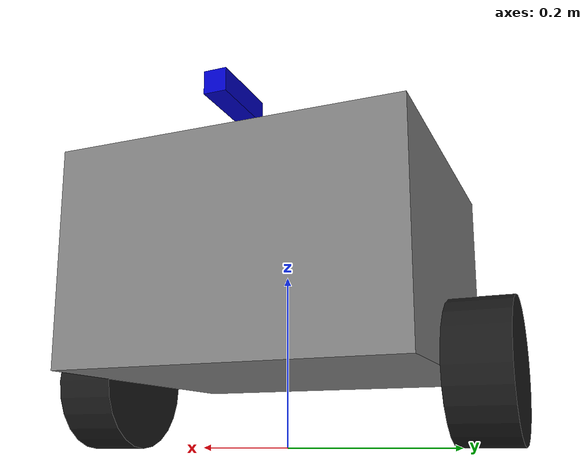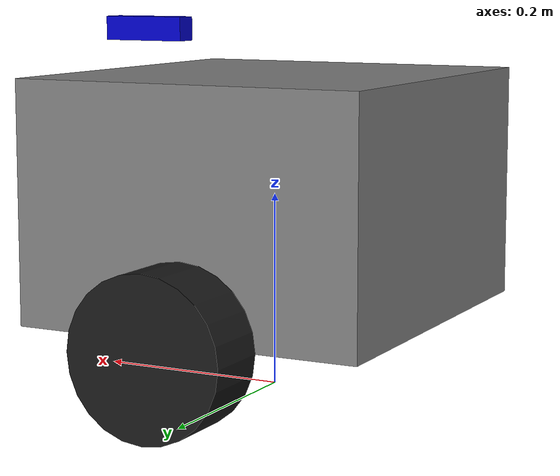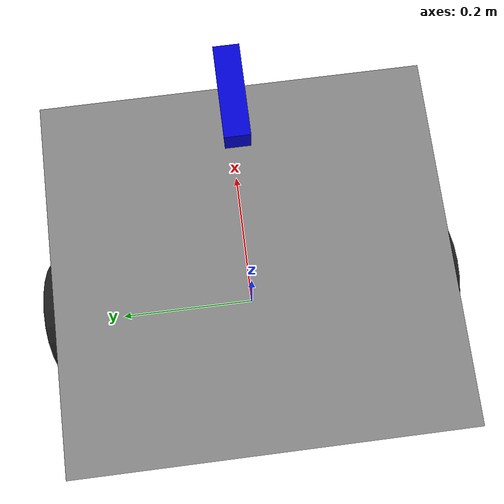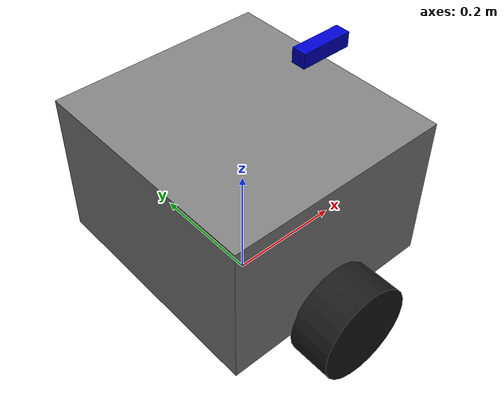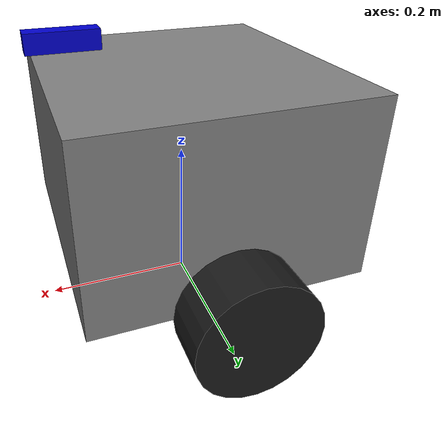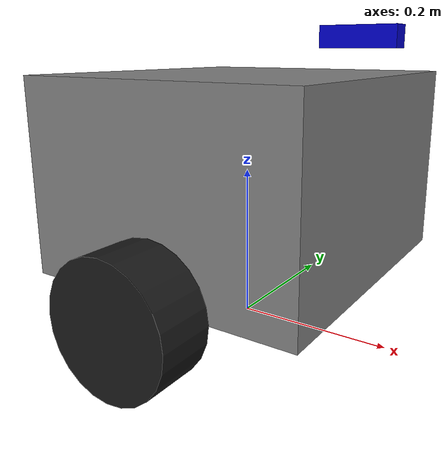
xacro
<?xml version="1.0"?>
<robot name="wall_e" xmlns:xacro="http://www.ros.org/wiki/xacro">

  <!-- ── PROPERTIES ── -->
  <xacro:property name="base_length"   value="0.365"/>
  <xacro:property name="base_width"    value="0.390"/>
  <xacro:property name="base_height"   value="0.245"/>
  <xacro:property name="track_width"   value="0.46"/>
  <xacro:property name="track_thick"   value="0.07"/>
  <xacro:property name="wheel_radius"  value="0.08"/>

  <xacro:property name="cam_height"    value="0.245"/>
  <xacro:property name="cam_forward"   value="0.15"/>

  <!-- ── BASE FOOTPRINT ── -->
  <link name="base_footprint">
    <inertial>
      <mass value="0.001"/>
      <inertia ixx="1e-6" ixy="0" ixz="0" iyy="1e-6" iyz="0" izz="1e-6"/>
    </inertial>
  </link>

  <joint name="base_footprint_joint" type="fixed">
    <parent link="base_footprint"/>
    <child  link="base_link"/>
    <origin xyz="0 0 ${base_height/2 + wheel_radius}" rpy="0 0 0"/>
  </joint>

  <!-- ── BASE LINK ── -->
  <link name="base_link">
    <visual>
      <geometry>
        <box size="${base_length} ${base_width} ${base_height}"/>
      </geometry>
      <material name="grey">
        <color rgba="0.5 0.5 0.5 1.0"/>
      </material>
    </visual>
    <collision>
      <geometry>
        <box size="${base_length} ${base_width} ${base_height}"/>
      </geometry>
    </collision>
    <inertial>
      <origin xyz="0 0 ${-base_height/4}" rpy="0 0 0"/>
      <mass value="8.0"/>
      <inertia ixx="0.1414" ixy="0" ixz="0"
               iyy="0.1288" iyz="0"
               izz="0.1902"/>
    </inertial>
  </link>

  <!-- ── LEFT TRACK (cylinder, rotation on joint) ── -->
  <link name="left_track">
    <visual>
      <origin xyz="0 0 0" rpy="0 0 0"/>
      <geometry>
        <cylinder length="${track_thick}" radius="${wheel_radius}"/>
      </geometry>
      <material name="black">
        <color rgba="0.1 0.1 0.1 1.0"/>
      </material>
    </visual>
    <collision>
      <origin xyz="0 0 0" rpy="0 0 0"/>
      <geometry>
        <cylinder length="${track_thick}" radius="${wheel_radius}"/>
      </geometry>
    </collision>
    <inertial>
      <mass value="0.5"/>
      <inertia ixx="0.001004" ixy="0" ixz="0"
               iyy="0.001600" iyz="0"
               izz="0.001004"/>
    </inertial>
  </link>

  <joint name="left_track_joint" type="continuous">
    <parent link="base_link"/>
    <child  link="left_track"/>
    <origin xyz="0 ${track_width/2} ${-base_height/2}" rpy="1.5707963267948966 0 0"/>
    <axis xyz="0 0 1"/>
    <dynamics damping="0.5" friction="0.5"/>
  </joint>

  <!-- ── RIGHT TRACK (cylinder, rotation on joint) ── -->
  <link name="right_track">
    <visual>
      <origin xyz="0 0 0" rpy="0 0 0"/>
      <geometry>
        <cylinder length="${track_thick}" radius="${wheel_radius}"/>
      </geometry>
      <material name="black">
        <color rgba="0.1 0.1 0.1 1.0"/>
      </material>
    </visual>
    <collision>
      <origin xyz="0 0 0" rpy="0 0 0"/>
      <geometry>
        <cylinder length="${track_thick}" radius="${wheel_radius}"/>
      </geometry>
    </collision>
    <inertial>
      <mass value="0.5"/>
      <inertia ixx="0.001004" ixy="0" ixz="0"
               iyy="0.001600" iyz="0"
               izz="0.001004"/>
    </inertial>
  </link>

  <joint name="right_track_joint" type="continuous">
    <parent link="base_link"/>
    <child  link="right_track"/>
    <origin xyz="0 ${-track_width/2} ${-base_height/2}" rpy="1.5707963267948966 0 0"/>
    <axis xyz="0 0 1"/>
    <dynamics damping="0.5" friction="0.5"/>
  </joint>

  <!-- ── D435 CAMERA ── -->
  <link name="camera_link">
    <visual>
      <geometry>
        <box size="0.09 0.025 0.025"/>
      </geometry>
      <material name="blue">
        <color rgba="0.0 0.0 0.8 1.0"/>
      </material>
    </visual>
    <collision>
      <geometry>
        <box size="0.09 0.025 0.025"/>
      </geometry>
    </collision>
    <inertial>
      <mass value="0.001"/>
      <inertia ixx="0.000001" ixy="0" ixz="0"
               iyy="0.000001" iyz="0"
               izz="0.000001"/>
    </inertial>
  </link>

  <joint name="camera_joint" type="fixed">
    <parent link="base_link"/>
    <child  link="camera_link"/>
    <origin xyz="${cam_forward} 0 ${cam_height - wheel_radius}" rpy="0 0 0"/>
  </joint>

  <!-- Camera depth optical frame -->
  <link name="camera_depth_optical_frame">
    <inertial>
      <mass value="0.001"/>
      <inertia ixx="1e-6" ixy="0" ixz="0" iyy="1e-6" iyz="0" izz="1e-6"/>
    </inertial>
  </link>

  <joint name="camera_optical_joint" type="fixed">
    <parent link="camera_link"/>
    <child  link="camera_depth_optical_frame"/>
    <origin xyz="0 0 0" rpy="${-pi/2} 0 ${-pi/2}"/>
  </joint>

  <!-- Camera color optical frame -->
  <link name="camera_color_optical_frame">
    <inertial>
      <mass value="0.001"/>
      <inertia ixx="1e-6" ixy="0" ixz="0" iyy="1e-6" iyz="0" izz="1e-6"/>
    </inertial>
  </link>

  <joint name="camera_color_optical_joint" type="fixed">
    <parent link="camera_link"/>
    <child  link="camera_color_optical_frame"/>
    <origin xyz="0 0 0" rpy="${-pi/2} 0 ${-pi/2}"/>
  </joint>

  <!-- ── IMU ── -->
  <link name="imu_link">
    <inertial>
      <mass value="0.001"/>
      <inertia ixx="1e-6" ixy="0" ixz="0" iyy="1e-6" iyz="0" izz="1e-6"/>
    </inertial>
  </link>

  <joint name="imu_joint" type="fixed">
    <parent link="base_link"/>
    <child  link="imu_link"/>
    <origin xyz="0 0 0.05" rpy="0 0 0"/>
  </joint>

  <!-- ── GAZEBO PLUGINS ── -->
  <gazebo>
    <plugin filename="gz-sim-diff-drive-system"
            name="gz::sim::systems::DiffDrive">
      <left_joint>left_track_joint</left_joint>
      <right_joint>right_track_joint</right_joint>
      <wheel_separation>${track_width}</wheel_separation>
      <wheel_radius>${wheel_radius}</wheel_radius>
      <odom_publish_frequency>30</odom_publish_frequency>
      <topic>/cmd_vel</topic>
      <odom_topic>/odom</odom_topic>
      <frame_id>odom</frame_id>
      <child_frame_id>base_footprint</child_frame_id>
    </plugin>

    <plugin filename="gz-sim-joint-state-publisher-system"
            name="gz::sim::systems::JointStatePublisher">
    </plugin>
  </gazebo>

  <gazebo reference="base_link">
    <material>Gazebo/Grey</material>
  </gazebo>

  <gazebo reference="left_track">
    <material>Gazebo/Black</material>
    <collision>
      <surface>
        <friction>
          <ode><mu>1.5</mu><mu2>1.5</mu2></ode>
        </friction>
        <contact>
          <ode><kp>1e6</kp><kd>100.0</kd><min_depth>0.001</min_depth></ode>
        </contact>
      </surface>
    </collision>
  </gazebo>

  <gazebo reference="right_track">
    <material>Gazebo/Black</material>
    <collision>
      <surface>
        <friction>
          <ode><mu>1.5</mu><mu2>1.5</mu2></ode>
        </friction>
        <contact>
          <ode><kp>1e6</kp><kd>100.0</kd><min_depth>0.001</min_depth></ode>
        </contact>
      </surface>
    </collision>
  </gazebo>

  <!-- ── PASSIVE SUPPORT SPHERES ── -->
  <xacro:macro name="support_wheel" params="name x_pos y_pos">
    <link name="${name}">
      <collision>
        <geometry><sphere radius="${wheel_radius}"/></geometry>
      </collision>
      <inertial>
        <mass value="0.01"/>
        <inertia ixx="0.00001" ixy="0" ixz="0"
                 iyy="0.00001" iyz="0"
                 izz="0.00001"/>
      </inertial>
    </link>
    <joint name="${name}_joint" type="fixed">
      <parent link="base_link"/>
      <child  link="${name}"/>
      <origin xyz="${x_pos} ${y_pos} ${-base_height/2}" rpy="0 0 0"/>
    </joint>
    <gazebo reference="${name}">
      <collision>
        <surface>
          <friction><ode><mu>0.01</mu><mu2>0.01</mu2></ode></friction>
        </surface>
      </collision>
    </gazebo>
  </xacro:macro>

  <xacro:support_wheel name="left_front_support"  x_pos="${base_length/2 - wheel_radius}" y_pos="${track_width/2}"/>
  <xacro:support_wheel name="left_rear_support"   x_pos="${-(base_length/2 - wheel_radius)}" y_pos="${track_width/2}"/>
  <xacro:support_wheel name="right_front_support" x_pos="${base_length/2 - wheel_radius}" y_pos="${-track_width/2}"/>
  <xacro:support_wheel name="right_rear_support"  x_pos="${-(base_length/2 - wheel_radius)}" y_pos="${-track_width/2}"/>

  <gazebo reference="camera_link">
    <material>Gazebo/Blue</material>
    <sensor name="rgbd_camera" type="rgbd_camera">
      <camera>
        <horizontal_fov>1.204</horizontal_fov>
        <image>
          <width>640</width>
          <height>480</height>
        </image>
        <clip>
          <near>0.3</near>
          <far>4.0</far>
        </clip>
      </camera>
      <always_on>1</always_on>
      <update_rate>5</update_rate>
      <topic>/wall_e/camera</topic>
      <gz_frame_id>camera_link</gz_frame_id>
    </sensor>
  </gazebo>

</robot>
